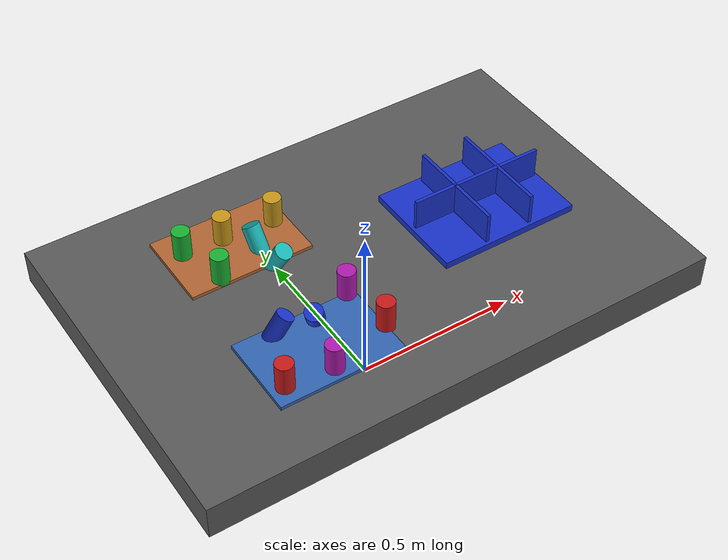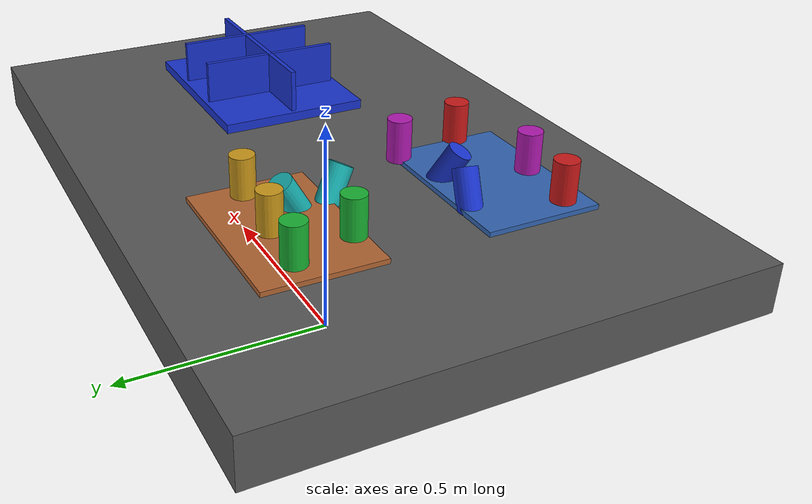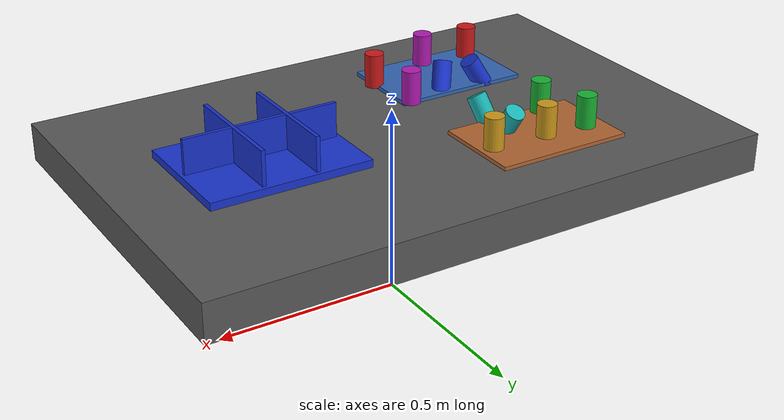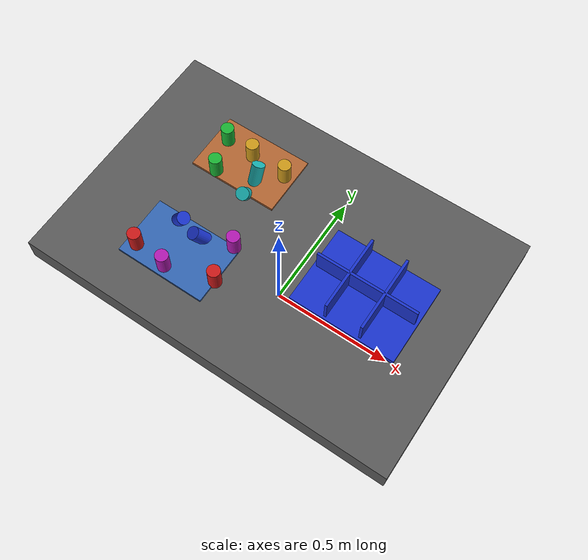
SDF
<?xml version="1.0" ?>
<sdf version="1.9">
  <!-- Standalone M1B scene.  The controller-backed Panda is spawned by the
       existing launch path; this file never alters the frozen M1A cube world. -->
  <world name="industrial_cylinder_v1">
    <physics name="bullet" type="bullet"><max_step_size>0.001</max_step_size><real_time_factor>1.0</real_time_factor></physics>
    <plugin name="gz::sim::systems::Physics" filename="gz-sim-physics-system"><engine><filename>gz-physics-bullet-featherstone-plugin</filename></engine></plugin>
    <plugin name="gz::sim::systems::UserCommands" filename="gz-sim-user-commands-system"/>
    <plugin name="gz::sim::systems::SceneBroadcaster" filename="gz-sim-scene-broadcaster-system"/>
    <plugin name="gz::sim::systems::Sensors" filename="gz-sim-sensors-system"><render_engine>ogre2</render_engine></plugin>
    <gravity>0 0 -9.81</gravity>
    <light type="directional" name="industrial_light"><pose>0 0 5 0 0 0</pose><direction>-0.3 0.2 -0.9</direction><diffuse>0.9 0.9 0.9 1</diffuse></light>
    <model name="industrial_work_table"><static>true</static><link name="link"><pose>0 0 0.4 0 0 0</pose><collision name="collision"><geometry><box><size>1.5 1.0 0.1</size></box></geometry></collision><visual name="visual"><geometry><box><size>1.5 1.0 0.1</size></box></geometry><material><diffuse>0.35 0.35 0.35 1</diffuse></material></visual></link></model>
    <model name="camera_fixture"><static>true</static><link name="camera_rgbd"><pose>-0.80 -0.80 1.40 0 0.77 0.93</pose><sensor name="front_rgbd" type="rgbd_camera"><always_on>1</always_on><update_rate>15</update_rate><topic>/xh/camera/rgbd</topic><camera><horizontal_fov>1.047</horizontal_fov><image><width>640</width><height>480</height><format>R8G8B8</format></image><clip><near>0.1</near><far>4.0</far></clip></camera></sensor></link></model>
    <model name="incoming_zone_a"><static>true</static><link name="link"><pose>-0.28 -0.22 0.455 0 0 0</pose><visual name="visual"><geometry><box><size>0.36 0.24 0.01</size></box></geometry><material><diffuse>0.2 0.4 0.7 1</diffuse></material></visual></link></model>
    <model name="incoming_zone_b"><static>true</static><link name="link"><pose>-0.28 0.22 0.455 0 0 0</pose><visual name="visual"><geometry><box><size>0.36 0.24 0.01</size></box></geometry><material><diffuse>0.7 0.4 0.2 1</diffuse></material></visual></link></model>
    <!-- M1B_RANDOM_PARTS_BEGIN -->
    <model name="cylinder_01"><pose>-0.4175 -0.2893 0.5000 0.0000 0.0000 -2.5436</pose><link name="link"><inertial><mass>0.06</mass></inertial><collision name="collision"><geometry><cylinder><radius>0.025</radius><length>0.09</length></cylinder></geometry></collision><visual name="visual"><geometry><cylinder><radius>0.025</radius><length>0.09</length></cylinder></geometry><material><diffuse>0.800 0.100 0.100 1</diffuse><specular>0.15 0.15 0.15 1</specular></material></visual></link></model>
    <model name="cylinder_02"><pose>-0.4051 0.2544 0.5000 3.1416 0.0000 1.6204</pose><link name="link"><inertial><mass>0.06</mass></inertial><collision name="collision"><geometry><cylinder><radius>0.025</radius><length>0.09</length></cylinder></geometry></collision><visual name="visual"><geometry><cylinder><radius>0.025</radius><length>0.09</length></cylinder></geometry><material><diffuse>0.100 0.700 0.200 1</diffuse><specular>0.15 0.15 0.15 1</specular></material></visual></link></model>
    <model name="cylinder_03"><pose>-0.2429 -0.1445 0.4800 0.4500 -0.3000 -0.1203</pose><link name="link"><inertial><mass>0.06</mass></inertial><collision name="collision"><geometry><cylinder><radius>0.025</radius><length>0.09</length></cylinder></geometry></collision><visual name="visual"><geometry><cylinder><radius>0.025</radius><length>0.09</length></cylinder></geometry><material><diffuse>0.100 0.200 0.800 1</diffuse><specular>0.15 0.15 0.15 1</specular></material></visual></link></model>
    <model name="cylinder_04"><pose>-0.1385 0.2393 0.5000 0.0000 0.0000 -1.7567</pose><link name="link"><inertial><mass>0.06</mass></inertial><collision name="collision"><geometry><cylinder><radius>0.025</radius><length>0.09</length></cylinder></geometry></collision><visual name="visual"><geometry><cylinder><radius>0.025</radius><length>0.09</length></cylinder></geometry><material><diffuse>0.800 0.600 0.100 1</diffuse><specular>0.15 0.15 0.15 1</specular></material></visual></link></model>
    <model name="cylinder_05"><pose>-0.1229 -0.1043 0.5000 3.1416 0.0000 -0.2562</pose><link name="link"><inertial><mass>0.06</mass></inertial><collision name="collision"><geometry><cylinder><radius>0.025</radius><length>0.09</length></cylinder></geometry></collision><visual name="visual"><geometry><cylinder><radius>0.025</radius><length>0.09</length></cylinder></geometry><material><diffuse>0.700 0.100 0.700 1</diffuse><specular>0.15 0.15 0.15 1</specular></material></visual></link></model>
    <model name="cylinder_06"><pose>-0.2142 0.0882 0.4800 0.4500 -0.3000 0.9333</pose><link name="link"><inertial><mass>0.06</mass></inertial><collision name="collision"><geometry><cylinder><radius>0.025</radius><length>0.09</length></cylinder></geometry></collision><visual name="visual"><geometry><cylinder><radius>0.025</radius><length>0.09</length></cylinder></geometry><material><diffuse>0.100 0.700 0.700 1</diffuse><specular>0.15 0.15 0.15 1</specular></material></visual></link></model>
    <model name="cylinder_07"><pose>-0.1008 -0.2502 0.5000 0.0000 0.0000 -1.6479</pose><link name="link"><inertial><mass>0.06</mass></inertial><collision name="collision"><geometry><cylinder><radius>0.025</radius><length>0.09</length></cylinder></geometry></collision><visual name="visual"><geometry><cylinder><radius>0.025</radius><length>0.09</length></cylinder></geometry><material><diffuse>0.800 0.100 0.100 1</diffuse><specular>0.15 0.15 0.15 1</specular></material></visual></link></model>
    <model name="cylinder_08"><pose>-0.3647 0.1216 0.5000 3.1416 0.0000 1.7830</pose><link name="link"><inertial><mass>0.06</mass></inertial><collision name="collision"><geometry><cylinder><radius>0.025</radius><length>0.09</length></cylinder></geometry></collision><visual name="visual"><geometry><cylinder><radius>0.025</radius><length>0.09</length></cylinder></geometry><material><diffuse>0.100 0.700 0.200 1</diffuse><specular>0.15 0.15 0.15 1</specular></material></visual></link></model>
    <model name="cylinder_09"><pose>-0.3425 -0.1273 0.4800 0.4500 -0.3000 1.8966</pose><link name="link"><inertial><mass>0.06</mass></inertial><collision name="collision"><geometry><cylinder><radius>0.025</radius><length>0.09</length></cylinder></geometry></collision><visual name="visual"><geometry><cylinder><radius>0.025</radius><length>0.09</length></cylinder></geometry><material><diffuse>0.100 0.200 0.800 1</diffuse><specular>0.15 0.15 0.15 1</specular></material></visual></link></model>
    <model name="cylinder_10"><pose>-0.2878 0.2482 0.5000 0.0000 0.0000 -1.7687</pose><link name="link"><inertial><mass>0.06</mass></inertial><collision name="collision"><geometry><cylinder><radius>0.025</radius><length>0.09</length></cylinder></geometry></collision><visual name="visual"><geometry><cylinder><radius>0.025</radius><length>0.09</length></cylinder></geometry><material><diffuse>0.800 0.600 0.100 1</diffuse><specular>0.15 0.15 0.15 1</specular></material></visual></link></model>
    <model name="cylinder_11"><pose>-0.2844 -0.3033 0.5000 3.1416 0.0000 1.9711</pose><link name="link"><inertial><mass>0.06</mass></inertial><collision name="collision"><geometry><cylinder><radius>0.025</radius><length>0.09</length></cylinder></geometry></collision><visual name="visual"><geometry><cylinder><radius>0.025</radius><length>0.09</length></cylinder></geometry><material><diffuse>0.700 0.100 0.700 1</diffuse><specular>0.15 0.15 0.15 1</specular></material></visual></link></model>
    <model name="cylinder_12"><pose>-0.2244 0.1796 0.4800 0.4500 -0.3000 -2.4591</pose><link name="link"><inertial><mass>0.06</mass></inertial><collision name="collision"><geometry><cylinder><radius>0.025</radius><length>0.09</length></cylinder></geometry></collision><visual name="visual"><geometry><cylinder><radius>0.025</radius><length>0.09</length></cylinder></geometry><material><diffuse>0.100 0.700 0.700 1</diffuse><specular>0.15 0.15 0.15 1</specular></material></visual></link></model>
    <!-- M1B_RANDOM_PARTS_END -->
    <model name="blue_partition_bin"><static>true</static><pose>0.36 0 0.45 0 0 0</pose><link name="link"><collision name="floor"><pose>0 0 0.01 0 0 0</pose><geometry><box><size>0.42 0.32 0.02</size></box></geometry></collision><visual name="floor_visual"><pose>0 0 0.01 0 0 0</pose><geometry><box><size>0.42 0.32 0.02</size></box></geometry><material><diffuse>0.1 0.2 0.8 1</diffuse></material></visual><visual name="row_divider"><pose>0 0 0.06 0 0 0</pose><geometry><box><size>0.40 0.01 0.10</size></box></geometry><material><diffuse>0.1 0.2 0.8 1</diffuse></material></visual><visual name="col_divider_a"><pose>-0.07 0 0.06 0 0 0</pose><geometry><box><size>0.01 0.30 0.10</size></box></geometry><material><diffuse>0.1 0.2 0.8 1</diffuse></material></visual><visual name="col_divider_b"><pose>0.07 0 0.06 0 0 0</pose><geometry><box><size>0.01 0.30 0.10</size></box></geometry><material><diffuse>0.1 0.2 0.8 1</diffuse></material></visual></link></model>
    <!-- Reserved only: second table, bin transport corridor, stackable-bin
         collision volume, and second arm mounting namespace. -->
  </world>
</sdf>
